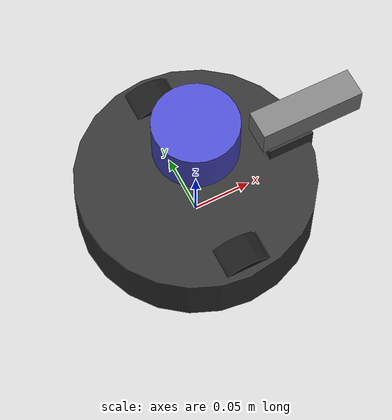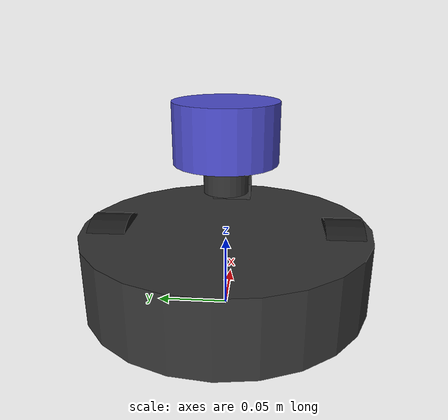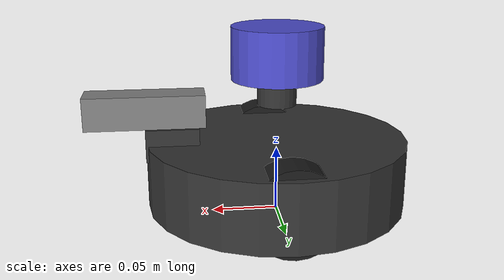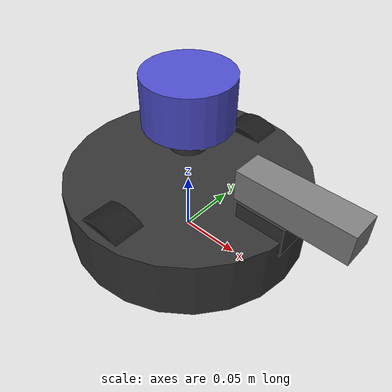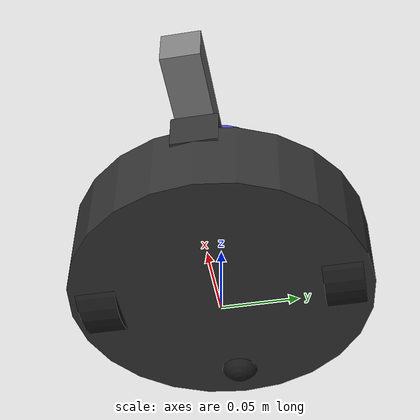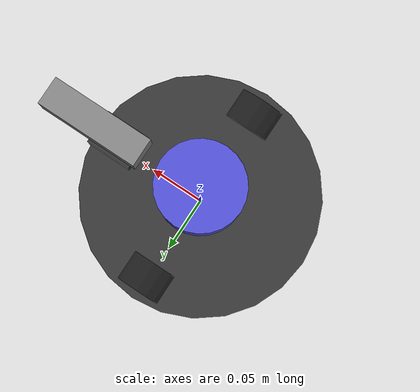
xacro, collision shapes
<?xml version="1.0"?>
<robot xmlns:xacro="http://www.ros.org/wiki/xacro" name="mining_robot">

  <!-- ==================== PROPERTIES ==================== -->
  <xacro:property name="chassis_radius" value="0.100"/>
  <xacro:property name="chassis_height" value="0.052"/>
  <xacro:property name="chassis_mass" value="0.50"/>

  <xacro:property name="wheel_radius" value="0.0325"/>
  <xacro:property name="wheel_width" value="0.026"/>
  <xacro:property name="wheel_mass" value="0.05"/>
  <xacro:property name="wheel_separation" value="0.160"/>

  <xacro:property name="caster_radius" value="0.015"/>
  <xacro:property name="caster_mass" value="0.02"/>

  <xacro:property name="lidar_height" value="0.040"/>
  <xacro:property name="lidar_radius" value="0.035"/>
  <xacro:property name="lidar_mass" value="0.10"/>

  <xacro:property name="camera_width" value="0.090"/>
  <xacro:property name="camera_depth" value="0.025"/>
  <xacro:property name="camera_height" value="0.025"/>
  <xacro:property name="camera_mass" value="0.08"/>

  <!-- Ground clearance -->
  <xacro:property name="ground_clearance" value="0.001"/>

  <!-- Friction coefficients -->
  <xacro:property name="wheel_friction" value="0.8"/>

  <!-- ==================== MATERIALS ==================== -->
  <material name="chassis_color">
    <color rgba="0.2 0.2 0.2 1.0"/>
  </material>

  <material name="wheel_color">
    <color rgba="0.1 0.1 0.1 1.0"/>
  </material>

  <material name="sensor_color">
    <color rgba="0.3 0.3 0.8 1.0"/>
  </material>

  <material name="camera_color">
    <color rgba="0.5 0.5 0.5 1.0"/>
  </material>

  <!-- ==================== INERTIA MACROS ==================== -->
  <xacro:macro name="cylinder_inertia" params="m r h">
    <inertia
      ixx="${m*(3*r*r + h*h)/12}" ixy="0" ixz="0"
      iyy="${m*(3*r*r + h*h)/12}" iyz="0"
      izz="${m*r*r/2}"/>
  </xacro:macro>

  <xacro:macro name="sphere_inertia" params="m r">
    <inertia
      ixx="${2*m*r*r/5}" ixy="0" ixz="0"
      iyy="${2*m*r*r/5}" iyz="0"
      izz="${2*m*r*r/5}"/>
  </xacro:macro>

  <xacro:macro name="box_inertia" params="m x y z">
    <inertia
      ixx="${m*(y*y + z*z)/12}" ixy="0" ixz="0"
      iyy="${m*(x*x + z*z)/12}" iyz="0"
      izz="${m*(x*x + y*y)/12}"/>
  </xacro:macro>

  <!-- ==================== BASE LINK (Chassis) ==================== -->
  <link name="base_footprint"/>

  <joint name="base_footprint_joint" type="fixed">
    <parent link="base_footprint"/>
    <child link="base_link"/>
    <origin xyz="0 0 ${wheel_radius + ground_clearance}" rpy="0 0 0"/>
  </joint>

  <link name="base_link">
    <visual>
      <geometry>
        <mesh filename="package://mining_robot_description/meshes/chassis.stl"/>
      </geometry>
      <material name="chassis_color"/>
    </visual>
    <collision>
      <geometry>
        <cylinder radius="${chassis_radius}" length="${chassis_height}"/>
      </geometry>
    </collision>
    <inertial>
      <mass value="${chassis_mass}"/>
      <origin xyz="0 0 ${chassis_height/2}" rpy="0 0 0"/>
      <xacro:cylinder_inertia m="${chassis_mass}" r="${chassis_radius}" h="${chassis_height}"/>
    </inertial>
  </link>

  <!-- ==================== WHEEL MACRO ==================== -->
  <xacro:macro name="wheel" params="prefix y_offset">
    <link name="${prefix}_wheel">
      <visual>
        <geometry>
          <mesh filename="package://mining_robot_description/meshes/wheel.stl"/>
        </geometry>
        <material name="wheel_color"/>
      </visual>
      <collision>
        <geometry>
          <cylinder radius="${wheel_radius}" length="${wheel_width}"/>
        </geometry>
        <origin xyz="0 0 0" rpy="${pi/2} 0 0"/>
      </collision>
      <inertial>
        <mass value="${wheel_mass}"/>
        <origin xyz="0 0 0" rpy="0 0 0"/>
        <xacro:cylinder_inertia m="${wheel_mass}" r="${wheel_radius}" h="${wheel_width}"/>
      </inertial>
    </link>

    <joint name="${prefix}_wheel_joint" type="continuous">
      <parent link="base_link"/>
      <child link="${prefix}_wheel"/>
      <origin xyz="0 ${y_offset} 0" rpy="0 0 0"/>
      <axis xyz="0 1 0"/>
      <dynamics damping="0.1" friction="${wheel_friction}"/>
    </joint>

    <!-- Gazebo friction settings -->
    <gazebo reference="${prefix}_wheel">
      <mu1>${wheel_friction}</mu1>
      <mu2>${wheel_friction}</mu2>
      <kp>1000000.0</kp>
      <kd>100.0</kd>
      <material>Gazebo/DarkGrey</material>
    </gazebo>
  </xacro:macro>

  <!-- Instantiate wheels -->
  <xacro:wheel prefix="left" y_offset="${wheel_separation/2}"/>
  <xacro:wheel prefix="right" y_offset="${-wheel_separation/2}"/>

  <!-- ==================== CASTER WHEEL ==================== -->
  <link name="caster_wheel">
    <visual>
      <geometry>
        <mesh filename="package://mining_robot_description/meshes/caster.stl"/>
      </geometry>
      <material name="wheel_color"/>
    </visual>
    <collision>
      <geometry>
        <sphere radius="${caster_radius}"/>
      </geometry>
    </collision>
    <inertial>
      <mass value="${caster_mass}"/>
      <origin xyz="0 0 0" rpy="0 0 0"/>
      <xacro:sphere_inertia m="${caster_mass}" r="${caster_radius}"/>
    </inertial>
  </link>

  <joint name="caster_wheel_joint" type="fixed">
    <parent link="base_link"/>
    <child link="caster_wheel"/>
    <!-- Caster at rear of robot, lowered to contact ground -->
    <origin xyz="${-chassis_radius + caster_radius + 0.01} 0 ${-wheel_radius + caster_radius}" rpy="0 0 0"/>
  </joint>

  <gazebo reference="caster_wheel">
    <mu1>0.1</mu1>
    <mu2>0.1</mu2>
    <kp>1000000.0</kp>
    <kd>100.0</kd>
    <material>Gazebo/DarkGrey</material>
  </gazebo>

  <!-- ==================== LIDAR SENSOR ==================== -->
  <link name="lidar_mount">
    <visual>
      <geometry>
        <mesh filename="package://mining_robot_description/meshes/lidar_mount.stl"/>
      </geometry>
      <material name="chassis_color"/>
    </visual>
    <collision>
      <geometry>
        <cylinder radius="0.015" length="0.020"/>
      </geometry>
    </collision>
    <inertial>
      <mass value="0.01"/>
      <origin xyz="0 0 0" rpy="0 0 0"/>
      <xacro:cylinder_inertia m="0.01" r="0.015" h="0.020"/>
    </inertial>
  </link>

  <joint name="lidar_mount_joint" type="fixed">
    <parent link="base_link"/>
    <child link="lidar_mount"/>
    <origin xyz="0 0 ${chassis_height + 0.010}" rpy="0 0 0"/>
  </joint>

  <link name="lidar_link">
    <visual>
      <geometry>
        <mesh filename="package://mining_robot_description/meshes/lidar_sensor.stl"/>
      </geometry>
      <material name="sensor_color"/>
    </visual>
    <collision>
      <geometry>
        <cylinder radius="${lidar_radius}" length="${lidar_height}"/>
      </geometry>
    </collision>
    <inertial>
      <mass value="${lidar_mass}"/>
      <origin xyz="0 0 0" rpy="0 0 0"/>
      <xacro:cylinder_inertia m="${lidar_mass}" r="${lidar_radius}" h="${lidar_height}"/>
    </inertial>
  </link>

  <joint name="lidar_joint" type="fixed">
    <parent link="lidar_mount"/>
    <child link="lidar_link"/>
    <origin xyz="0 0 ${lidar_height/2 + 0.010}" rpy="0 0 0"/>
  </joint>

  <!-- LiDAR Sensor Frame (optical frame for scan data) -->
  <link name="lidar_optical_frame"/>

  <joint name="lidar_optical_joint" type="fixed">
    <parent link="lidar_link"/>
    <child link="lidar_optical_frame"/>
    <origin xyz="0 0 0" rpy="0 0 0"/>
  </joint>

  <!-- ==================== DEPTH CAMERA ==================== -->
  <link name="camera_mount">
    <visual>
      <geometry>
        <mesh filename="package://mining_robot_description/meshes/camera_mount.stl"/>
      </geometry>
      <material name="chassis_color"/>
    </visual>
    <collision>
      <geometry>
        <box size="0.040 0.030 0.025"/>
      </geometry>
    </collision>
    <inertial>
      <mass value="0.02"/>
      <origin xyz="0 0 0" rpy="0 0 0"/>
      <xacro:box_inertia m="0.02" x="0.040" y="0.030" z="0.025"/>
    </inertial>
  </link>

  <joint name="camera_mount_joint" type="fixed">
    <parent link="base_link"/>
    <child link="camera_mount"/>
    <!-- Camera mount at front of robot -->
    <origin xyz="${chassis_radius - 0.020} 0 ${chassis_height/2}" rpy="0 0 0"/>
  </joint>

  <link name="camera_link">
    <visual>
      <geometry>
        <mesh filename="package://mining_robot_description/meshes/camera_sensor.stl"/>
      </geometry>
      <material name="camera_color"/>
    </visual>
    <collision>
      <geometry>
        <box size="${camera_width} ${camera_depth} ${camera_height}"/>
      </geometry>
    </collision>
    <inertial>
      <mass value="${camera_mass}"/>
      <origin xyz="0 0 0" rpy="0 0 0"/>
      <xacro:box_inertia m="${camera_mass}" x="${camera_width}" y="${camera_depth}" z="${camera_height}"/>
    </inertial>
  </link>

  <joint name="camera_joint" type="fixed">
    <parent link="camera_mount"/>
    <child link="camera_link"/>
    <origin xyz="0.020 0 ${camera_height/2 + 0.0125}" rpy="0 0 0"/>
  </joint>

  <!-- Camera Optical Frame (Z forward, X right, Y down per REP-103) -->
  <link name="camera_optical_frame"/>

  <joint name="camera_optical_joint" type="fixed">
    <parent link="camera_link"/>
    <child link="camera_optical_frame"/>
    <!-- Rotate to optical frame convention -->
    <origin xyz="0 0 0" rpy="${-pi/2} 0 ${-pi/2}"/>
  </joint>

  <!-- Depth Camera Frame -->
  <link name="camera_depth_frame"/>

  <joint name="camera_depth_joint" type="fixed">
    <parent link="camera_link"/>
    <child link="camera_depth_frame"/>
    <origin xyz="0 0 0" rpy="0 0 0"/>
  </joint>

  <link name="camera_depth_optical_frame"/>

  <joint name="camera_depth_optical_joint" type="fixed">
    <parent link="camera_depth_frame"/>
    <child link="camera_depth_optical_frame"/>
    <origin xyz="0 0 0" rpy="${-pi/2} 0 ${-pi/2}"/>
  </joint>

  <!-- ==================== GAZEBO PLUGINS ==================== -->

  <!-- Differential Drive Controller -->
  <gazebo>
    <plugin filename="libgazebo_ros_diff_drive.so" name="diff_drive">
      <ros>
        <namespace>/</namespace>
        <remapping>cmd_vel:=cmd_vel</remapping>
        <remapping>odom:=odom</remapping>
      </ros>

      <!-- Wheel joints -->
      <left_joint>left_wheel_joint</left_joint>
      <right_joint>right_wheel_joint</right_joint>

      <!-- Kinematics -->
      <wheel_separation>${wheel_separation}</wheel_separation>
      <wheel_diameter>${wheel_radius * 2}</wheel_diameter>

      <!-- Limits -->
      <max_wheel_torque>5.0</max_wheel_torque>
      <max_wheel_acceleration>2.0</max_wheel_acceleration>

      <!-- Odometry -->
      <odometry_frame>odom</odometry_frame>
      <robot_base_frame>base_footprint</robot_base_frame>

      <!-- TF -->
      <publish_odom>true</publish_odom>
      <publish_odom_tf>true</publish_odom_tf>
      <publish_wheel_tf>true</publish_wheel_tf>

      <!-- Update rate -->
      <update_rate>100.0</update_rate>
    </plugin>
  </gazebo>

  <!-- GPU LiDAR Sensor (RPLidar A2 specs) -->
  <gazebo reference="lidar_link">
    <sensor name="gpu_lidar" type="gpu_lidar">
      <pose>0 0 0 0 0 0</pose>
      <topic>scan</topic>
      <update_rate>10</update_rate>
      <lidar>
        <scan>
          <horizontal>
            <samples>360</samples>
            <resolution>1</resolution>
            <min_angle>${-pi}</min_angle>
            <max_angle>${pi}</max_angle>
          </horizontal>
          <vertical>
            <samples>1</samples>
            <resolution>1</resolution>
            <min_angle>0</min_angle>
            <max_angle>0</max_angle>
          </vertical>
        </scan>
        <range>
          <min>0.12</min>
          <max>10.0</max>
          <resolution>0.01</resolution>
        </range>
        <noise>
          <type>gaussian</type>
          <mean>0.0</mean>
          <stddev>0.01</stddev>
        </noise>
      </lidar>
      <always_on>true</always_on>
      <visualize>true</visualize>
    </sensor>
    <material>Gazebo/Blue</material>
  </gazebo>

  <!-- Depth Camera Sensor (Intel RealSense D435i specs) -->
  <gazebo reference="camera_link">
    <sensor name="depth_camera" type="depth_camera">
      <pose>0 0 0 0 0 0</pose>
      <topic>camera/depth</topic>
      <update_rate>30</update_rate>
      <camera>
        <horizontal_fov>${87 * pi / 180}</horizontal_fov>
        <image>
          <width>640</width>
          <height>480</height>
          <format>R_FLOAT32</format>
        </image>
        <clip>
          <near>0.1</near>
          <far>10.0</far>
        </clip>
        <noise>
          <type>gaussian</type>
          <mean>0.0</mean>
          <stddev>0.005</stddev>
        </noise>
      </camera>
      <always_on>true</always_on>
      <visualize>true</visualize>
    </sensor>

    <!-- RGB Camera -->
    <sensor name="rgb_camera" type="camera">
      <pose>0 0 0 0 0 0</pose>
      <topic>camera/image_raw</topic>
      <update_rate>30</update_rate>
      <camera>
        <horizontal_fov>${69 * pi / 180}</horizontal_fov>
        <image>
          <width>640</width>
          <height>480</height>
          <format>R8G8B8</format>
        </image>
        <clip>
          <near>0.1</near>
          <far>100.0</far>
        </clip>
      </camera>
      <always_on>true</always_on>
      <visualize>false</visualize>
    </sensor>
    <material>Gazebo/Grey</material>
  </gazebo>

  <!-- IMU Sensor (D435i has built-in IMU) -->
  <gazebo reference="camera_link">
    <sensor name="imu_sensor" type="imu">
      <pose>0 0 0 0 0 0</pose>
      <topic>imu</topic>
      <update_rate>200</update_rate>
      <imu>
        <angular_velocity>
          <x>
            <noise type="gaussian">
              <mean>0.0</mean>
              <stddev>0.0002</stddev>
            </noise>
          </x>
          <y>
            <noise type="gaussian">
              <mean>0.0</mean>
              <stddev>0.0002</stddev>
            </noise>
          </y>
          <z>
            <noise type="gaussian">
              <mean>0.0</mean>
              <stddev>0.0002</stddev>
            </noise>
          </z>
        </angular_velocity>
        <linear_acceleration>
          <x>
            <noise type="gaussian">
              <mean>0.0</mean>
              <stddev>0.017</stddev>
            </noise>
          </x>
          <y>
            <noise type="gaussian">
              <mean>0.0</mean>
              <stddev>0.017</stddev>
            </noise>
          </y>
          <z>
            <noise type="gaussian">
              <mean>0.0</mean>
              <stddev>0.017</stddev>
            </noise>
          </z>
        </linear_acceleration>
      </imu>
      <always_on>true</always_on>
    </sensor>
  </gazebo>

  <!-- Joint State Publisher -->
  <gazebo>
    <plugin filename="libgazebo_ros_joint_state_publisher.so" name="joint_state_publisher">
      <ros>
        <namespace>/</namespace>
        <remapping>joint_states:=joint_states</remapping>
      </ros>
      <joint_name>left_wheel_joint</joint_name>
      <joint_name>right_wheel_joint</joint_name>
      <update_rate>50</update_rate>
    </plugin>
  </gazebo>

</robot>
